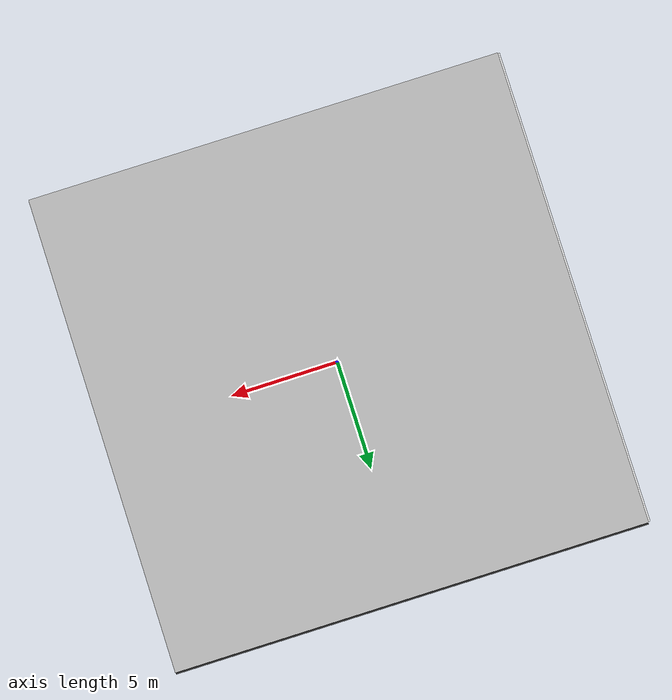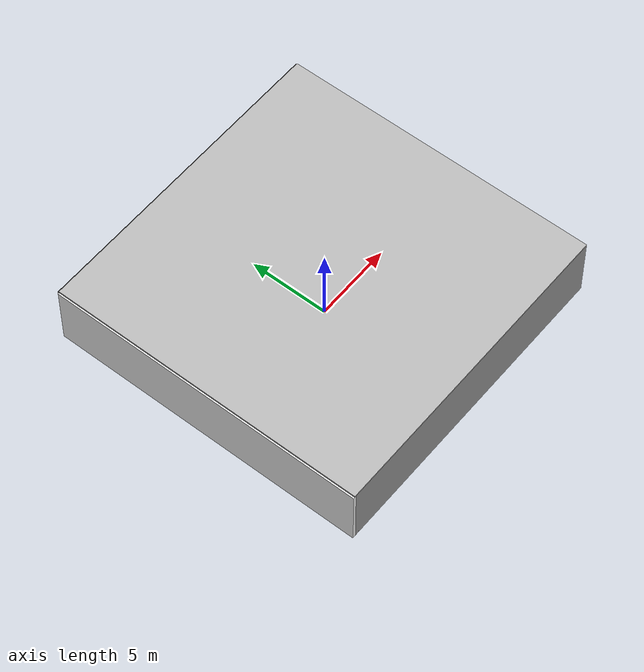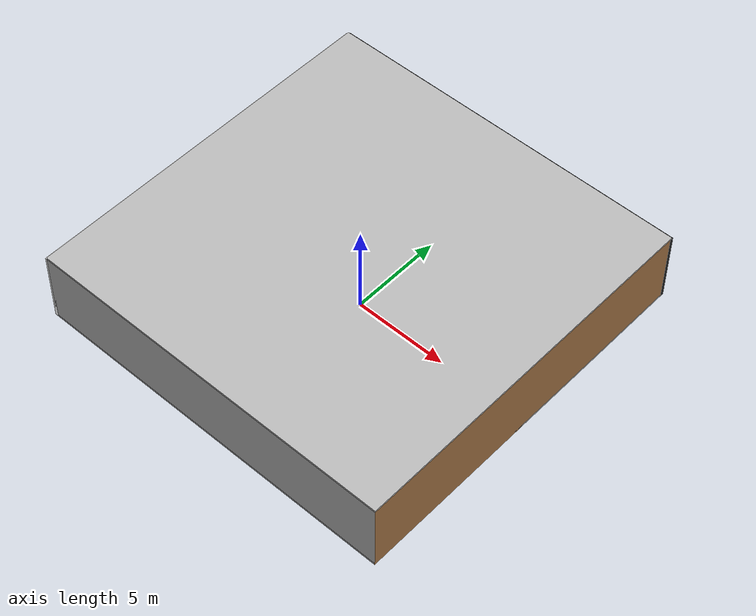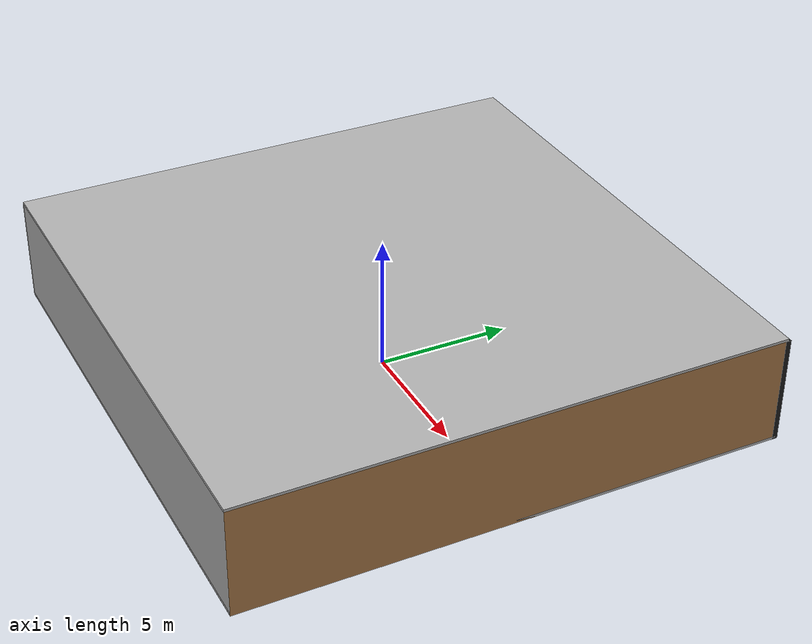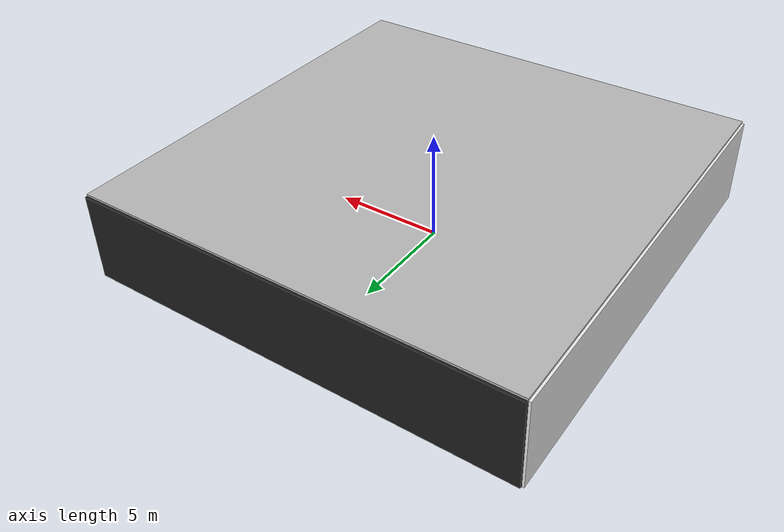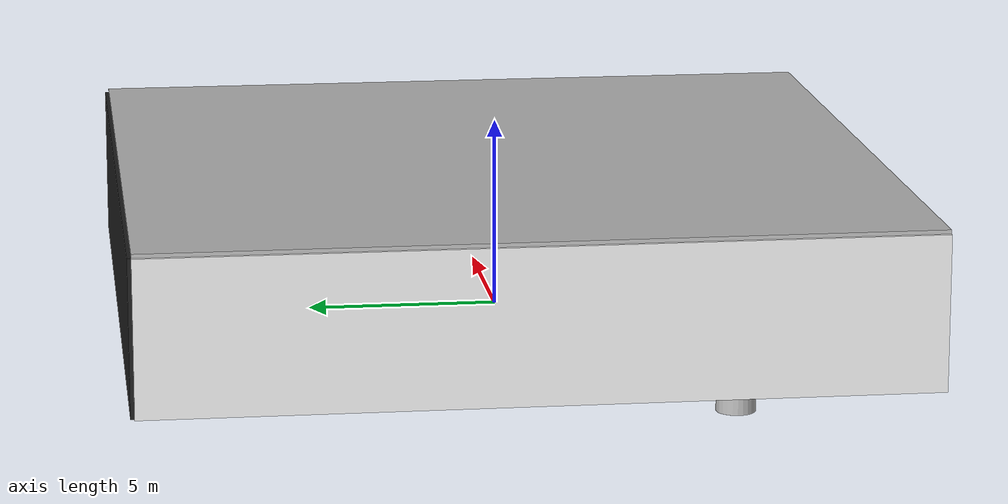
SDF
<sdf version="1.4">
 <world name="default">
  <physics type="ode">
   <max_step_size>0.001</max_step_size>
   <real_time_factor>1</real_time_factor>
   <real_time_update_rate>1000</real_time_update_rate>
   <gravity>0 0 -9.8</gravity>
  </physics>
  <scene><ambient>0.4 0.4 0.4 1</ambient><background>0.7 0.7 0.7 1</background><shadows>1</shadows></scene>
  <model name="Surrounding">
   <static>1</static>
   <link name="Ceiling">
    <collision name="Ceiling_Collision"><geometry><box><size>20 20 0.1</size></box></geometry></collision>
    <visual name="Ceiling_Visual">
     <geometry><box><size>20 20 0.1</size></box></geometry>
     <material>
      <script><uri>file://media/materials/scripts/gazebo.material</uri><name>Gazebo/LightOn</name></script>
     </material>
    </visual>
    <pose>0 0 4.05 0 0 0</pose>
   </link>
   <link name="Wall_South">
    <collision name="Wall_South_Collision">
     <geometry><box><size>20 0 4</size></box></geometry>
     <pose>0 0 2 0 -0 0</pose>
    </collision>
    <visual name="Wall_South_Visual">
     <pose>0 0 2 0 -0 0</pose>
     <geometry><box><size>20 0 4</size></box></geometry>
     <material>
      <script><uri>file://media/materials/scripts/gazebo.material</uri><name>Gazebo/GreyGradientSky</name></script>
     </material>
    </visual>
    <velocity_decay><linear>0</linear><angular>0</angular></velocity_decay>
    <pose>0 -10 0 0 -0 0</pose>
   </link>
   <link name="Wall_East">
    <collision name="Wall_21_Collision">
     <geometry><box><size>20 0 4</size></box></geometry>
     <pose>0 0 2 0 -0 0</pose>
    </collision>
    <visual name="Wall_21_Visual">
     <pose>0 0 2 0 -0 0</pose>
     <geometry><box><size>20 0 4</size></box></geometry>
     <material>
      <script><uri>file://media/materials/scripts/gazebo.material</uri><name>Gazebo/Wood</name></script>
     </material>
    </visual>
    <velocity_decay><linear>0</linear><angular>0</angular></velocity_decay>
    <pose>10 0 0 0 -0 1.5708</pose>
   </link>
   <link name="Wall_North">
    <collision name="Wall_22_Collision">
     <geometry><box><size>20 0.2 4</size></box></geometry>
     <pose>0 0 2 0 -0 0</pose>
    </collision>
    <visual name="Wall_22_Visual">
     <pose>0 0 2 0 -0 0</pose>
     <geometry><box><size>20 0.2 4</size></box></geometry>
     <material>
      <script><uri>file://media/materials/scripts/gazebo.material</uri><name>Gazebo/FlatBlack</name></script>
     </material>
    </visual>
    <velocity_decay><linear>0</linear><angular>0</angular></velocity_decay>
    <pose>0 10 0 0 -0 0</pose>
   </link>
   <link name="Wall_West">
    <collision name="Wall_23_Collision">
     <geometry><box><size>20 0.2 4</size></box></geometry>
     <pose>0 0 2 0 -0 0</pose>
    </collision>
    <visual name="Wall_23_Visual">
     <pose>0 0 2 0 -0 0</pose>
     <geometry><box><size>20 0.2 4</size></box></geometry>
     <material>
      <script><uri>file://media/materials/scripts/gazebo.material</uri><name>Gazebo/WhiteGlow</name></script>
     </material>
    </visual>
    <velocity_decay><linear>0</linear><angular>0</angular></velocity_decay>
    <pose>-10 0 0 0 0 -1.5708</pose>
   </link>
   <link name="Ground_link">
    <collision name="collision">
     <pose>0 0 .05 0 -0 0</pose>
     <geometry><box><size>20 20 0.1</size></box></geometry>
    </collision>
    <visual name="visual">
     <pose>0 0 .05 0 -0 0</pose>
     <geometry><box><size>20 20 0.1</size></box></geometry>
     <material>
      <script><uri>file://media/materials/scripts/gazebo.material</uri><name>Gazebo/LightOff</name></script>
     </material>
    </visual>
   </link>
   <static>1</static>
  </model>
  <spherical_coordinates>
   <surface_model>EARTH_WGS84</surface_model>
   <latitude_deg>0</latitude_deg>
   <longitude_deg>0</longitude_deg>
   <elevation>0</elevation>
   <heading_deg>0</heading_deg>
  </spherical_coordinates>
  <light name="lightball_0" type="diffuse">
   <diffuse>0.8 0.8 0.8 1</diffuse>
   <specular>0.2 0.2 0.2 1</specular>
   <attenuation>
    <range>100</range>
    <constant>0.7</constant>
    <linear>0.01</linear>
    <quadratic>0.001</quadratic>
   </attenuation>
   <direction>-0.5 0.1 -0.9</direction>
   <pose>-7.50164293108 -9.46917353114 1.55932766972 0 0 0</pose>
  </light>
  <light name="lightball_1" type="diffuse">
   <diffuse>0.8 0.8 0.8 1</diffuse>
   <specular>0.2 0.2 0.2 1</specular>
   <attenuation>
    <range>100</range>
    <constant>0.7</constant>
    <linear>0.01</linear>
    <quadratic>0.001</quadratic>
   </attenuation>
   <direction>-0.5 0.1 -0.9</direction>
   <pose>0.18704069469 -3.81300326642 2.75502110285 0 0 0</pose>
  </light>
  <light name="lightball_2" type="diffuse">
   <diffuse>0.8 0.8 0.8 1</diffuse>
   <specular>0.2 0.2 0.2 1</specular>
   <attenuation>
    <range>100</range>
    <constant>0.7</constant>
    <linear>0.01</linear>
    <quadratic>0.001</quadratic>
   </attenuation>
   <direction>-0.5 0.1 -0.9</direction>
   <pose>8.90682708773 -9.99209133475 0.996978675508 0 0 0</pose>
  </light>
  <light name="lightball_3" type="diffuse">
   <diffuse>0.8 0.8 0.8 1</diffuse>
   <specular>0.2 0.2 0.2 1</specular>
   <attenuation>
    <range>100</range>
    <constant>0.7</constant>
    <linear>0.01</linear>
    <quadratic>0.001</quadratic>
   </attenuation>
   <direction>-0.5 0.1 -0.9</direction>
   <pose>-9.07202686157 2.14861348059 2.8779538387 0 0 0</pose>
  </light>
  <light name="lightball_4" type="diffuse">
   <diffuse>0.8 0.8 0.8 1</diffuse>
   <specular>0.2 0.2 0.2 1</specular>
   <attenuation>
    <range>100</range>
    <constant>0.7</constant>
    <linear>0.01</linear>
    <quadratic>0.001</quadratic>
   </attenuation>
   <direction>-0.5 0.1 -0.9</direction>
   <pose>-8.00372548253 1.49772087243 3.31398983426 0 0 0</pose>
  </light>
  <light name="lightball_5" type="diffuse">
   <diffuse>0.8 0.8 0.8 1</diffuse>
   <specular>0.2 0.2 0.2 1</specular>
   <attenuation>
    <range>100</range>
    <constant>0.7</constant>
    <linear>0.01</linear>
    <quadratic>0.001</quadratic>
   </attenuation>
   <direction>-0.5 0.1 -0.9</direction>
   <pose>-5.26220191113 -3.7713217953 3.50250789018 0 0 0</pose>
  </light>
  <light name="lightball_6" type="diffuse">
   <diffuse>0.8 0.8 0.8 1</diffuse>
   <specular>0.2 0.2 0.2 1</specular>
   <attenuation>
    <range>100</range>
    <constant>0.7</constant>
    <linear>0.01</linear>
    <quadratic>0.001</quadratic>
   </attenuation>
   <direction>-0.5 0.1 -0.9</direction>
   <pose>8.98090749535 -6.52911689378 2.96666089197 0 0 0</pose>
  </light>
  <light name="lightball_7" type="diffuse">
   <diffuse>0.8 0.8 0.8 1</diffuse>
   <specular>0.2 0.2 0.2 1</specular>
   <attenuation>
    <range>100</range>
    <constant>0.7</constant>
    <linear>0.01</linear>
    <quadratic>0.001</quadratic>
   </attenuation>
   <direction>-0.5 0.1 -0.9</direction>
   <pose>8.7694546972 -9.50554301263 1.64371592883 0 0 0</pose>
  </light>
  <light name="lightball_8" type="diffuse">
   <diffuse>0.8 0.8 0.8 1</diffuse>
   <specular>0.2 0.2 0.2 1</specular>
   <attenuation>
    <range>100</range>
    <constant>0.7</constant>
    <linear>0.01</linear>
    <quadratic>0.001</quadratic>
   </attenuation>
   <direction>-0.5 0.1 -0.9</direction>
   <pose>-8.09833197298 -0.209638976854 1.8793457111 0 0 0</pose>
  </light>
  <light name="lightball_9" type="diffuse">
   <diffuse>0.8 0.8 0.8 1</diffuse>
   <specular>0.2 0.2 0.2 1</specular>
   <attenuation>
    <range>100</range>
    <constant>0.7</constant>
    <linear>0.01</linear>
    <quadratic>0.001</quadratic>
   </attenuation>
   <direction>-0.5 0.1 -0.9</direction>
   <pose>-2.31855522821 5.01562272855 2.3693383422 0 0 0</pose>
  </light>
  <light name="lightball_10" type="diffuse">
   <diffuse>0.8 0.8 0.8 1</diffuse>
   <specular>0.2 0.2 0.2 1</specular>
   <attenuation>
    <range>100</range>
    <constant>0.7</constant>
    <linear>0.01</linear>
    <quadratic>0.001</quadratic>
   </attenuation>
   <direction>-0.5 0.1 -0.9</direction>
   <pose>7.16454590679 2.28673728799 1.20767000704 0 0 0</pose>
  </light>
  <light name="lightball_11" type="diffuse">
   <diffuse>0.8 0.8 0.8 1</diffuse>
   <specular>0.2 0.2 0.2 1</specular>
   <attenuation>
    <range>100</range>
    <constant>0.7</constant>
    <linear>0.01</linear>
    <quadratic>0.001</quadratic>
   </attenuation>
   <direction>-0.5 0.1 -0.9</direction>
   <pose>-0.837576705453 -7.11166387851 2.00123611995 0 0 0</pose>
  </light>
  <light name="lightball_12" type="diffuse">
   <diffuse>0.8 0.8 0.8 1</diffuse>
   <specular>0.2 0.2 0.2 1</specular>
   <attenuation>
    <range>100</range>
    <constant>0.7</constant>
    <linear>0.01</linear>
    <quadratic>0.001</quadratic>
   </attenuation>
   <direction>-0.5 0.1 -0.9</direction>
   <pose>9.26853701598 -5.60434832656 3.43893671427 0 0 0</pose>
  </light>
  <light name="lightball_13" type="diffuse">
   <diffuse>0.8 0.8 0.8 1</diffuse>
   <specular>0.2 0.2 0.2 1</specular>
   <attenuation>
    <range>100</range>
    <constant>0.7</constant>
    <linear>0.01</linear>
    <quadratic>0.001</quadratic>
   </attenuation>
   <direction>-0.5 0.1 -0.9</direction>
   <pose>4.23651736974 -4.45025456735 1.03356399508 0 0 0</pose>
  </light>
  <include>
   <uri>model://textured_shapes</uri>
   <pose>-8.16406198943 -3.84805351998 0 0 0 2.29011175913</pose>
  </include>
  <include>
   <uri>model://construction_cone</uri>
   <pose>-4.00519514815 1.71515518257 0 0 0 2.73556915029</pose>
  </include>
  <include>
   <uri>model://robocup_3Dsim_goal</uri>
   <pose>-2.25079265567 7.04149749814 0 0 0 0.702949683935</pose>
  </include>
  <include>
   <uri>model://robocup_3Dsim_goal</uri>
   <pose>8.05097435165 -1.08850776727 0 0 0 0.31369289091</pose>
  </include>
 </world>
</sdf>

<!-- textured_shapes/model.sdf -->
<sdf version="1.6">
  <model name="textured_shapes">
    <pose>0 0 0.5 0 0 0</pose>
    <link name="box">
      <pose>0 -1.5 0 0 0 0</pose>
      <collision name="collision">
        <geometry>
          <box>
            <size>1 1 1</size>
          </box>
        </geometry>
      </collision>
      <visual name="visual">
        <geometry>
          <box>
            <size>1 1 1</size>
          </box>
        </geometry>
        <material>
          <script>
            <uri>model://../model_source/models/textured_shapes/materials/scripts</uri>
            <uri>model://../model_source/models/textured_shapes/materials/textures</uri>
            <name>TexturedShape/Squares</name>
          </script>
        </material>
      </visual>
    </link>
    <link name="sphere">
      <collision name="collision">
        <geometry>
          <sphere>
            <radius>0.5</radius>
          </sphere>
        </geometry>
      </collision>
      <visual name="visual">
        <geometry>
          <sphere>
            <radius>0.5</radius>
          </sphere>
        </geometry>
        <material>
          <script>
            <uri>model://../model_source/models/textured_shapes/materials/scripts</uri>
            <uri>model://../model_source/models/textured_shapes/materials/textures</uri>
            <name>TexturedShape/Squares</name>
          </script>
        </material>
      </visual>
    </link>
    <link name="cylinder">
      <pose>0 1.5 0 0 0 0</pose>
      <collision name="collision">
        <geometry>
          <cylinder>
            <radius>0.5</radius>
            <length>1</length>
          </cylinder>
        </geometry>
      </collision>
      <visual name="visual">
        <geometry>
          <cylinder>
            <radius>0.5</radius>
            <length>1</length>
          </cylinder>
        </geometry>
        <material>
          <script>
            <uri>model://../model_source/models/textured_shapes/materials/scripts</uri>
            <uri>model://../model_source/models/textured_shapes/materials/textures</uri>
            <name>TexturedShape/Squares</name>
          </script>
        </material>
      </visual>
    </link>
  </model>
</sdf>

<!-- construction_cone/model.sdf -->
<sdf version="1.5">
  <model name="Construction Cone">
    <link name="link">
      <collision name="collision">
        <geometry>
          <mesh>
            <scale>10 10 10</scale>
            <uri>file://isr-testbed/construction_cone/meshes/construction_cone.dae</uri>
          </mesh>
        </geometry>
      </collision>
      <visual name="visual">
        <geometry>
          <mesh>
            <scale>10 10 10</scale>
            <uri>file://isr-testbed/construction_cone/meshes/construction_cone.dae</uri>
          </mesh>
        </geometry>
      </visual>
    </link>
  </model>
</sdf>

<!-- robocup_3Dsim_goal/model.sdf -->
<sdf version="1.5">
  <model name="robocup_3d_goal">
    <static>true</static>
    <link name="left_post">
      <pose>0 1.05 0.45 0 0 0</pose>
      <collision name="collision">
        <geometry>
          <cylinder>
            <radius>0.05</radius>
            <length>0.9</length>
          </cylinder>
        </geometry>
      </collision>
      <visual name="visual">
        <geometry>
          <cylinder>
            <radius>0.05</radius>
            <length>0.9</length>
          </cylinder>
        </geometry>
        <material>
          <script>
            <uri>file://media/materials/scripts/gazebo.material</uri>
            <name>Gazebo/ZincYellow</name>
          </script>
        </material>
      </visual>
    </link>
    <link name="left_support_horiz_lower">
      <pose>0.30 1.05 0.01 0 0 0</pose>
      <collision name="collision">
        <geometry>
          <box>
            <size>0.50 0.02 0.02</size>
          </box>
        </geometry>
      </collision>
      <visual name="visual">
        <geometry>
          <box>
            <size>0.50 0.02 0.02</size>
          </box>
        </geometry>
        <material>
          <script>
            <uri>file://media/materials/scripts/gazebo.material</uri>
            <name>Gazebo/White</name>
          </script>
        </material>
      </visual>
    </link>
    <link name="left_support_horiz_upper">
      <pose>0.30 1.05 0.79 0 0 0</pose>
      <collision name="collision">
        <geometry>
          <box>
            <size>0.50 0.02 0.02</size>
          </box>
        </geometry>
      </collision>
      <visual name="visual">
        <geometry>
          <box>
            <size>0.50 0.02 0.02</size>
          </box>
        </geometry>
        <material>
          <script>
            <uri>file://media/materials/scripts/gazebo.material</uri>
            <name>Gazebo/White</name>
          </script>
        </material>
      </visual>
    </link>
    <link name="left_support_vertical">
      <pose>0.56 1.05 0.4 0 1.5708 0</pose>
      <collision name="collision">
        <geometry>
          <box>
            <size>0.80 0.02 0.02</size>
          </box>
        </geometry>
      </collision>
      <visual name="visual">
        <geometry>
          <box>
            <size>0.80 0.02 0.02</size>
          </box>
        </geometry>
        <material>
          <script>
            <uri>file://media/materials/scripts/gazebo.material</uri>
            <name>Gazebo/White</name>
          </script>
        </material>
      </visual>
    </link>
    <link name="right_support_horiz_lower">
      <pose>0.30 -1.05 0.01 0 0 0</pose>
      <collision name="collision">
        <geometry>
          <box>
            <size>0.50 0.02 0.02</size>
          </box>
        </geometry>
      </collision>
      <visual name="visual">
        <geometry>
          <box>
            <size>0.50 0.02 0.02</size>
          </box>
        </geometry>
        <material>
          <script>
            <uri>file://media/materials/scripts/gazebo.material</uri>
            <name>Gazebo/White</name>
          </script>
        </material>
      </visual>
    </link>
    <link name="right_support_horiz_upper">
      <pose>0.30 -1.05 0.79 0 0 0</pose>
      <collision name="collision">
        <geometry>
          <box>
            <size>0.50 0.02 0.02</size>
          </box>
        </geometry>
      </collision>
      <visual name="visual">
        <geometry>
          <box>
            <size>0.50 0.02 0.02</size>
          </box>
        </geometry>
        <material>
          <script>
            <uri>file://media/materials/scripts/gazebo.material</uri>
            <name>Gazebo/White</name>
          </script>
        </material>
      </visual>
    </link>
    <link name="right_support_vertical">
      <pose>0.56 -1.05 0.4 0 1.5708 0</pose>
      <collision name="collision">
        <geometry>
          <box>
            <size>0.80 0.02 0.02</size>
          </box>
        </geometry>
      </collision>
      <visual name="visual">
        <geometry>
          <box>
            <size>0.80 0.02 0.02</size>
          </box>
        </geometry>
        <material>
          <script>
            <uri>file://media/materials/scripts/gazebo.material</uri>
            <name>Gazebo/White</name>
          </script>
        </material>
      </visual>
    </link>
    <link name="center_support_horiz_lower">
      <pose>0.56 0 0.01 0 1.5708 0</pose>
      <collision name="collision">
        <geometry>
          <box>
            <size>0.02 2.08 0.02</size>
          </box>
        </geometry>
      </collision>
      <visual name="visual">
        <geometry>
          <box>
            <size>0.02 2.08 0.02</size>
          </box>
        </geometry>
        <material>
          <script>
            <uri>file://media/materials/scripts/gazebo.material</uri>
            <name>Gazebo/White</name>
          </script>
        </material>
      </visual>
    </link>
    <link name="center_support_horiz_upper">
      <pose>0.56 0 0.79 0 1.5708 0</pose>
      <collision name="collision">
        <geometry>
          <box>
            <size>0.02 2.08 0.02</size>
          </box>
        </geometry>
      </collision>
      <visual name="visual">
        <geometry>
          <box>
            <size>0.02 2.08 0.02</size>
          </box>
        </geometry>
        <material>
          <script>
            <uri>file://media/materials/scripts/gazebo.material</uri>
            <name>Gazebo/White</name>
          </script>
        </material>
      </visual>
    </link>
    <link name="right_post">
      <pose>0 -1.05 0.45 0 0 0</pose>
      <collision name="collision">
        <geometry>
          <cylinder>
            <radius>0.05</radius>
            <length>0.9</length>
          </cylinder>
        </geometry>
      </collision>
      <visual name="visual">
        <geometry>
          <cylinder>
            <radius>0.05</radius>
            <length>0.9</length>
          </cylinder>
        </geometry>
        <material>
          <script>
            <uri>file://media/materials/scripts/gazebo.material</uri>
            <name>Gazebo/ZincYellow</name>
          </script>
        </material>
      </visual>
    </link>
    <link name="crossbar">
      <pose>0 0 0.85 1.57 1.57 0</pose>
      <collision name="collision">
        <geometry>
          <cylinder>
            <radius>0.05</radius>
            <length>2.0</length>
          </cylinder>
        </geometry>
      </collision>
      <visual name="visual">
        <geometry>
          <cylinder>
            <radius>0.05</radius>
            <length>2.0</length>
          </cylinder>
        </geometry>
        <material>
          <script>
            <uri>file://media/materials/scripts/gazebo.material</uri>
            <name>Gazebo/ZincYellow</name>
          </script>
        </material>
      </visual>
    </link>
    <link name="center_net">
      <pose>0.56 0 0.40 0 0 0</pose>
      <collision name="collision">
        <geometry>
          <box>
            <size>0.01 2.1 0.80</size>
          </box>
        </geometry>
      </collision>
      <visual name="visual">
        <geometry>
          <box>
            <size>0.01 2.1 0.80</size>
          </box>
        </geometry>
        <material>
          <script>
            <uri>model://../model_source/models/robocup09_spl_field/materials/scripts/</uri>
            <uri>model://../model_source/models/robocup09_spl_field/materials/textures/</uri>
            <name>RoboCup/Net</name>
          </script>
        </material>
      </visual>
    </link>
    <link name="left_net">
      <pose>0.30 1.05 0.40 0 0 0</pose>
      <collision name="collision">
        <geometry>
          <box>
            <size>0.50 0.01 0.76</size>
          </box>
        </geometry>
      </collision>
      <visual name="visual">
        <geometry>
          <box>
            <size>0.50 0.01 0.76</size>
          </box>
        </geometry>
        <material>
          <script>
            <uri>model://../model_source/models/robocup09_spl_field/materials/scripts/</uri>
            <uri>model://../model_source/models/robocup09_spl_field/materials/textures/</uri>
            <name>RoboCup/Net</name>
          </script>
        </material>
      </visual>
    </link>
    <link name="right_net">
      <pose>0.30 -1.05 0.40 0 0 0</pose>
      <collision name="collision">
        <geometry>
          <box>
            <size>0.50 0.01 0.76</size>
          </box>
        </geometry>
      </collision>
      <visual name="visual">
        <geometry>
          <box>
            <size>0.50 0.01 0.76</size>
          </box>
        </geometry>
        <material>
          <script>
            <uri>model://../model_source/models/robocup09_spl_field/materials/scripts/</uri>
            <uri>model://../model_source/models/robocup09_spl_field/materials/textures/</uri>
            <name>RoboCup/Net</name>
          </script>
        </material>
      </visual>
    </link>
  </model>
</sdf>
